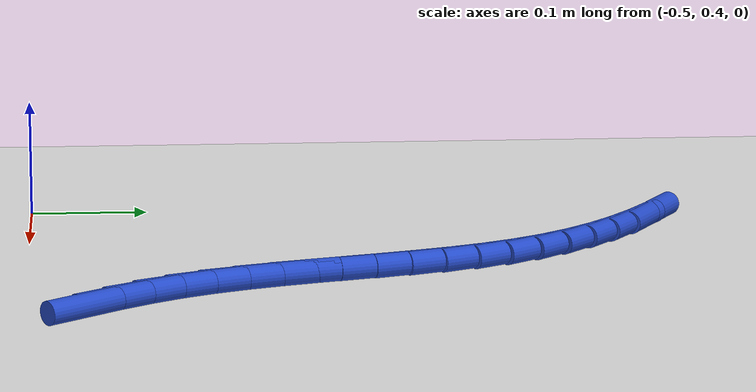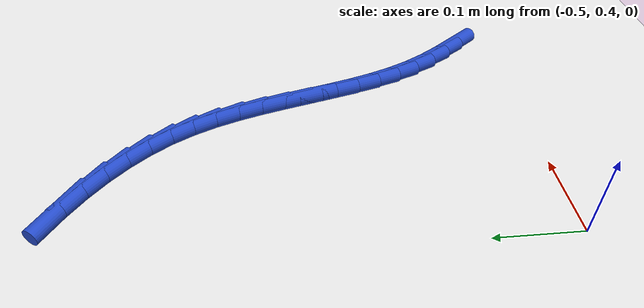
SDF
<sdf version="1.6">
 <world name="default">
  <model name="ground_plane">
   <static>1</static>
   <link name="link">
    <collision name="collision">
     <geometry><plane><normal>0 0 1</normal><size>100 100</size></plane></geometry>
     <surface><friction><ode><mu>100</mu><mu2>50</mu2></ode></friction></surface>
    </collision>
    <visual name="visual">
     <cast_shadows>0</cast_shadows>
     <geometry><plane><normal>0 0 1</normal><size>100 100</size></plane></geometry>
     <material>
      <script><uri>file://media/materials/scripts/gazebo.material</uri><name>Gazebo/WhiteGlow</name></script>
     </material>
    </visual>
   </link>
  </model>
  <model name="line">
   <link name="link_17">
    <pose>-0.17366583600599542 0.4522198172076878 0.01 0 1.57 -0.9262236966206563</pose>
    <collision name="collision">
     <geometry><cylinder><radius>0.01</radius><length>0.08</length></cylinder></geometry>
    </collision>
    <visual name="visual">
     <material>
      <script><name>Gazebo/Blue</name><uri>file://media/materials/scripts/gazebo.material</uri></script>
     </material>
     <geometry><cylinder><radius>0.01</radius><length>0.08</length></cylinder></geometry>
    </visual>
   </link>
   <link name="link_18">
    <pose>-0.19150458875010512 0.47595180047126134 0.01 0 1.57 -0.9799831927021702</pose>
    <collision name="collision">
     <geometry><cylinder><radius>0.01</radius><length>0.08</length></cylinder></geometry>
    </collision>
    <visual name="visual">
     <material>
      <script><name>Gazebo/Blue</name><uri>file://media/materials/scripts/gazebo.material</uri></script>
     </material>
     <geometry><cylinder><radius>0.01</radius><length>0.08</length></cylinder></geometry>
    </visual>
   </link>
   <link name="link_19">
    <pose>-0.20792351878009438 0.5004308505417382 0.01 0 1.57 -1.051399155599642</pose>
    <collision name="collision">
     <geometry><cylinder><radius>0.01</radius><length>0.08</length></cylinder></geometry>
    </collision>
    <visual name="visual">
     <material>
      <script><name>Gazebo/Blue</name><uri>file://media/materials/scripts/gazebo.material</uri></script>
     </material>
     <geometry><cylinder><radius>0.01</radius><length>0.08</length></cylinder></geometry>
    </visual>
   </link>
   <link name="link_20">
    <pose>-0.22247131971115094 0.52587467111034 0.01 0 1.57 -1.1357771198597164</pose>
    <collision name="collision">
     <geometry><cylinder><radius>0.01</radius><length>0.08</length></cylinder></geometry>
    </collision>
    <visual name="visual">
     <material>
      <script><name>Gazebo/Blue</name><uri>file://media/materials/scripts/gazebo.material</uri></script>
     </material>
     <geometry><cylinder><radius>0.01</radius><length>0.08</length></cylinder></geometry>
    </visual>
   </link>
   <link name="link_21">
    <pose>-0.23481664504538222 0.5524403254533082 0.01 0 1.57 -1.2091313294210193</pose>
    <collision name="collision">
     <geometry><cylinder><radius>0.01</radius><length>0.08</length></cylinder></geometry>
    </collision>
    <visual name="visual">
     <material>
      <script><name>Gazebo/Blue</name><uri>file://media/materials/scripts/gazebo.material</uri></script>
     </material>
     <geometry><cylinder><radius>0.01</radius><length>0.08</length></cylinder></geometry>
    </visual>
   </link>
   <link name="link_22">
    <pose>-0.2452344332365281 0.5799783963057 0.01 0 1.57 -1.263931293792359</pose>
    <collision name="collision">
     <geometry><cylinder><radius>0.01</radius><length>0.08</length></cylinder></geometry>
    </collision>
    <visual name="visual">
     <material>
      <script><name>Gazebo/Blue</name><uri>file://media/materials/scripts/gazebo.material</uri></script>
     </material>
     <geometry><cylinder><radius>0.01</radius><length>0.08</length></cylinder></geometry>
    </visual>
   </link>
   <link name="link_23">
    <pose>-0.25419071796160425 0.6082428666646291 0.01 0 1.57 -1.3006178087018954</pose>
    <collision name="collision">
     <geometry><cylinder><radius>0.01</radius><length>0.08</length></cylinder></geometry>
    </collision>
    <visual name="visual">
     <material>
      <script><name>Gazebo/Blue</name><uri>file://media/materials/scripts/gazebo.material</uri></script>
     </material>
     <geometry><cylinder><radius>0.01</radius><length>0.08</length></cylinder></geometry>
    </visual>
   </link>
   <link name="link_24">
    <pose>-0.26215160461107295 0.6369876832756477 0.01 0 1.57 -1.3197595442775536</pose>
    <collision name="collision">
     <geometry><cylinder><radius>0.01</radius><length>0.08</length></cylinder></geometry>
    </collision>
    <visual name="visual">
     <material>
      <script><name>Gazebo/Blue</name><uri>file://media/materials/scripts/gazebo.material</uri></script>
     </material>
     <geometry><cylinder><radius>0.01</radius><length>0.08</length></cylinder></geometry>
    </visual>
   </link>
   <link name="link_25">
    <pose>-0.26958319857539687 0.6659667928843084 0.01 0 1.57 -1.3217095534787657</pose>
    <collision name="collision">
     <geometry><cylinder><radius>0.01</radius><length>0.08</length></cylinder></geometry>
    </collision>
    <visual name="visual">
     <material>
      <script><name>Gazebo/Blue</name><uri>file://media/materials/scripts/gazebo.material</uri></script>
     </material>
     <geometry><cylinder><radius>0.01</radius><length>0.08</length></cylinder></geometry>
    </visual>
   </link>
   <link name="link_26">
    <pose>-0.27695160524503804 0.6949341422361632 0.01 0 1.57 -1.3064434179974773</pose>
    <collision name="collision">
     <geometry><cylinder><radius>0.01</radius><length>0.08</length></cylinder></geometry>
    </collision>
    <visual name="visual">
     <material>
      <script><name>Gazebo/Blue</name><uri>file://media/materials/scripts/gazebo.material</uri></script>
     </material>
     <geometry><cylinder><radius>0.01</radius><length>0.08</length></cylinder></geometry>
    </visual>
   </link>
   <link name="link_27">
    <pose>-0.2847229300104592 0.7236436780767651 0.01 0 1.57 -1.2735389336065988</pose>
    <collision name="collision">
     <geometry><cylinder><radius>0.01</radius><length>0.08</length></cylinder></geometry>
    </collision>
    <visual name="visual">
     <material>
      <script><name>Gazebo/Blue</name><uri>file://media/materials/scripts/gazebo.material</uri></script>
     </material>
     <geometry><cylinder><radius>0.01</radius><length>0.08</length></cylinder></geometry>
    </visual>
   </link>
   <link name="link_28">
    <pose>-0.29336327826212233 0.7518493471516657 0.01 0 1.57 -1.2222965829232277</pose>
    <collision name="collision">
     <geometry><cylinder><radius>0.01</radius><length>0.08</length></cylinder></geometry>
    </collision>
    <visual name="visual">
     <material>
      <script><name>Gazebo/Blue</name><uri>file://media/materials/scripts/gazebo.material</uri></script>
     </material>
     <geometry><cylinder><radius>0.01</radius><length>0.08</length></cylinder></geometry>
    </visual>
   </link>
   <link name="link_29">
    <pose>-0.3033387553904901 0.7793050962064177 0.01 0 1.57 -1.1520415776940556</pose>
    <collision name="collision">
     <geometry><cylinder><radius>0.01</radius><length>0.08</length></cylinder></geometry>
    </collision>
    <visual name="visual">
     <material>
      <script><name>Gazebo/Blue</name><uri>file://media/materials/scripts/gazebo.material</uri></script>
     </material>
     <geometry><cylinder><radius>0.01</radius><length>0.08</length></cylinder></geometry>
    </visual>
   </link>
   <link name="link_30">
    <pose>-0.31511546678602487 0.8057648719865738 0.01 0 1.57 -1.0628116432189374</pose>
    <collision name="collision">
     <geometry><cylinder><radius>0.01</radius><length>0.08</length></cylinder></geometry>
    </collision>
    <visual name="visual">
     <material>
      <script><name>Gazebo/Blue</name><uri>file://media/materials/scripts/gazebo.material</uri></script>
     </material>
     <geometry><cylinder><radius>0.01</radius><length>0.08</length></cylinder></geometry>
    </visual>
   </link>
   <link name="link_31">
    <pose>-0.32915535796203527 0.8309840066204499 0.01 0 1.57 -0.9646996621314903</pose>
    <collision name="collision">
     <geometry><cylinder><radius>0.01</radius><length>0.08</length></cylinder></geometry>
    </collision>
    <visual name="visual">
     <material>
      <script><name>Gazebo/Blue</name><uri>file://media/materials/scripts/gazebo.material</uri></script>
     </material>
     <geometry><cylinder><radius>0.01</radius><length>0.08</length></cylinder></geometry>
    </visual>
   </link>
   <link name="link_32">
    <pose>-0.34566484152624843 0.8548029335193719 0.01 0 1.57 -0.872752068725949</pose>
    <collision name="collision">
     <geometry><cylinder><radius>0.01</radius><length>0.08</length></cylinder></geometry>
    </collision>
    <visual name="visual">
     <material>
      <script><name>Gazebo/Blue</name><uri>file://media/materials/scripts/gazebo.material</uri></script>
     </material>
     <geometry><cylinder><radius>0.01</radius><length>0.08</length></cylinder></geometry>
    </visual>
   </link>
   <link name="link_33">
    <pose>-0.36445080013086184 0.8771951433685966 0.01 0 1.57 -0.7881748281781484</pose>
    <collision name="collision">
     <geometry><cylinder><radius>0.01</radius><length>0.08</length></cylinder></geometry>
    </collision>
    <visual name="visual">
     <material>
      <script><name>Gazebo/Blue</name><uri>file://media/materials/scripts/gazebo.material</uri></script>
     </material>
     <geometry><cylinder><radius>0.01</radius><length>0.08</length></cylinder></geometry>
    </visual>
   </link>
   <link name="link_34">
    <pose>-0.3852853413779471 0.8981457081461137 0.01 0 1.57 -0.7105371816020005</pose>
    <collision name="collision">
     <geometry><cylinder><radius>0.01</radius><length>0.08</length></cylinder></geometry>
    </collision>
    <visual name="visual">
     <material>
      <script><name>Gazebo/Blue</name><uri>file://media/materials/scripts/gazebo.material</uri></script>
     </material>
     <geometry><cylinder><radius>0.01</radius><length>0.08</length></cylinder></geometry>
    </visual>
   </link>
   <link name="link_35">
    <pose>-0.4079405728695761 0.9176396998299137 0.01 0 1.57 -0.63917088614371</pose>
    <collision name="collision">
     <geometry><cylinder><radius>0.01</radius><length>0.08</length></cylinder></geometry>
    </collision>
    <visual name="visual">
     <material>
      <script><name>Gazebo/Blue</name><uri>file://media/materials/scripts/gazebo.material</uri></script>
     </material>
     <geometry><cylinder><radius>0.01</radius><length>0.08</length></cylinder></geometry>
    </visual>
   </link>
   <link name="link_36">
    <pose>-0.43218860220782035 0.9356621903979863 0.01 0 1.57 -0.5732855182751896</pose>
    <collision name="collision">
     <geometry><cylinder><radius>0.01</radius><length>0.08</length></cylinder></geometry>
    </collision>
    <visual name="visual">
     <material>
      <script><name>Gazebo/Blue</name><uri>file://media/materials/scripts/gazebo.material</uri></script>
     </material>
     <geometry><cylinder><radius>0.01</radius><length>0.08</length></cylinder></geometry>
    </visual>
   </link>
  </model>
 </world>
</sdf>
